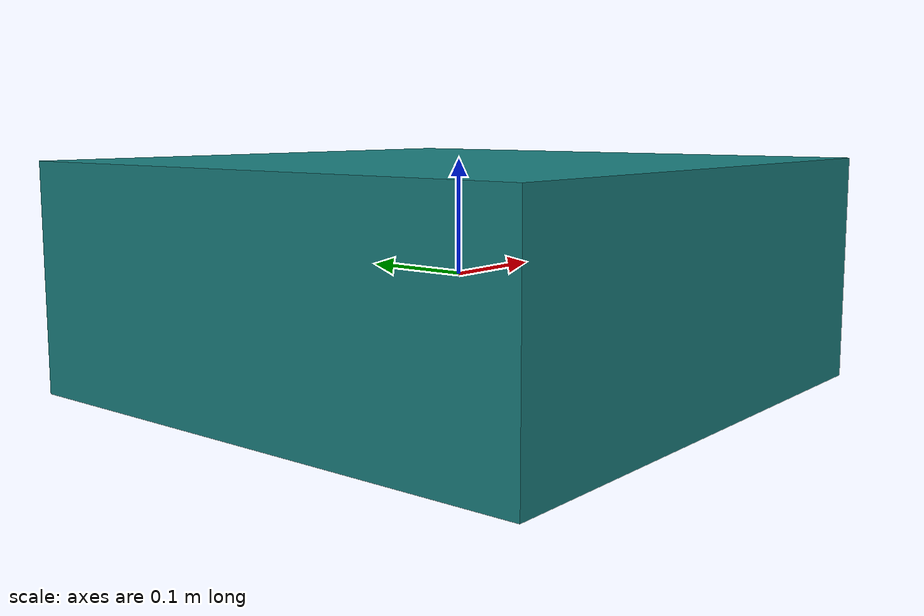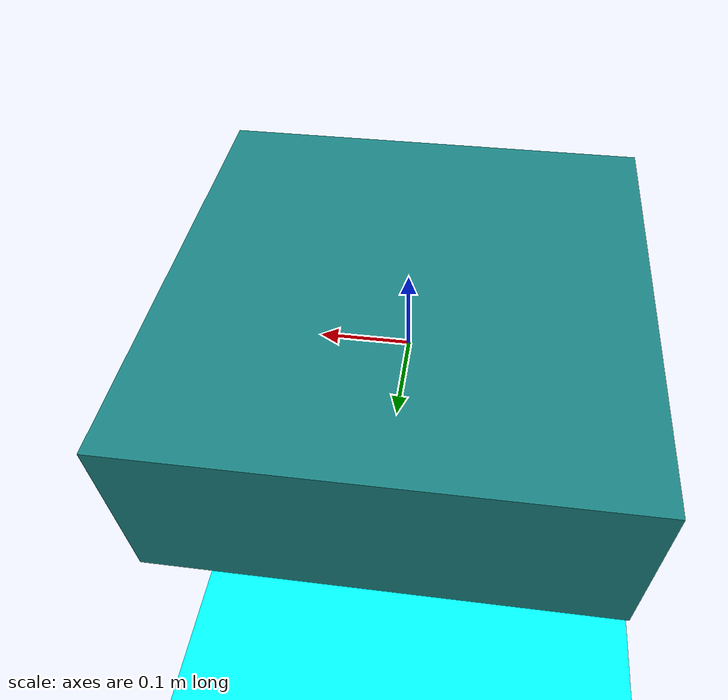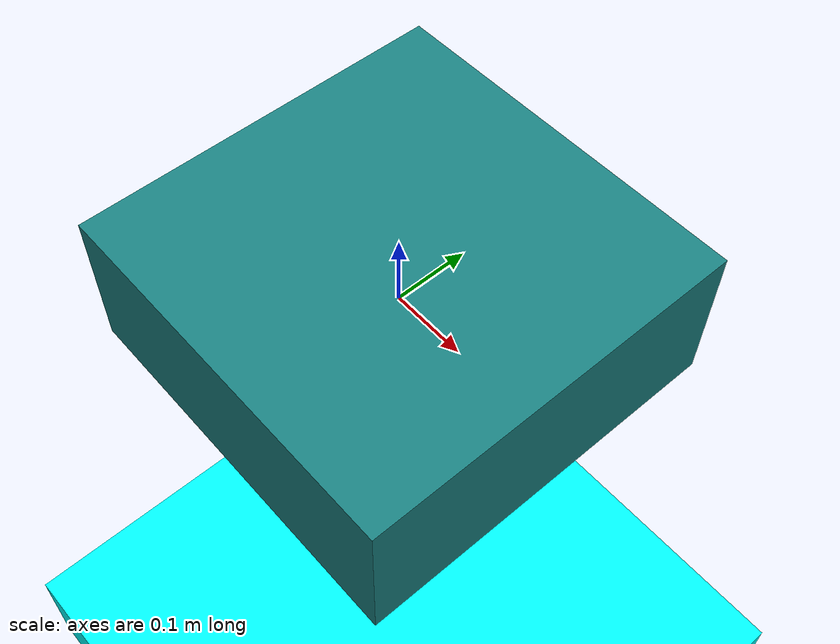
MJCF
<mujoco model="box_push_2d">
<!-- Copyright (c) 2023 Robotics and AI Institute LLC dba RAI Institute. All rights reserved. -->

  <option timestep="0.01" />

  <asset>
    <texture name="blue_grid" type="2d" builtin="checker" rgb1=".02 .14 .44" rgb2=".27 .55 1" width="300" height="300" mark="edge" markrgb="1 1 1"/>
    <material name="blue_grid" texture="blue_grid" texrepeat="1 1" texuniform="true" reflectance=".2"/>
  </asset>

  <default>
    <default class="slider">
      <position kp="10" ctrlrange="-10 10" forcerange="-1000 1000"/>
    </default>
  </default>

  <worldbody>
    <body>
      <geom mass="0" name="floor" pos="0 0 -1" condim="3" size="10.0 10.0 0.10" rgba="0 1 1 1" type="box" material="blue_grid"/>
    </body>

    <body name="object" pos="0 0 0">
      <joint name="slider_object_x" damping="1" type="slide" axis="1 0 0" />
      <joint name="slider_object_y" damping="1" type="slide" axis="0 1 0" />
      <geom name="object" type="box" size="0.25 0.25 0.1" mass="1" rgba=".1 .5 .5 1" friction="0"/>
      <site pos="0 0 0" name="site_object"/>
    </body>

    <body name="cart" pos="0 0 0">
      <joint name="slider_x" damping="1" type="slide" axis="1 0 0" />
      <joint name="slider_y" damping="1" type="slide" axis="0 1 0" />
      <geom name="cart" type="box" size="0.25 0.25 0.1" mass="1" rgba=".9 .5 .5 1" friction="0"/>
      <site pos="0 0 0" name="site_cart"/>
    </body>
  </worldbody>

    <sensor>
      <framepos objtype="site" objname="site_cart" reftype="site" refname="site_object"/>
    </sensor>

  <actuator>
    <position name="actuator_cart_x" joint="slider_x" class="slider" />
    <position name="actuator_cart_y" joint="slider_y" class="slider" />
  </actuator>

</mujoco>
